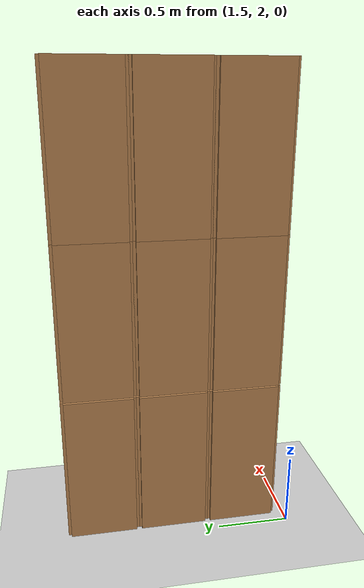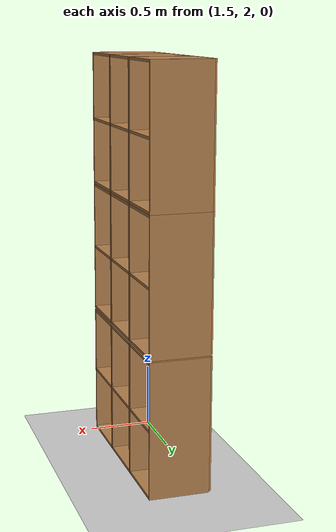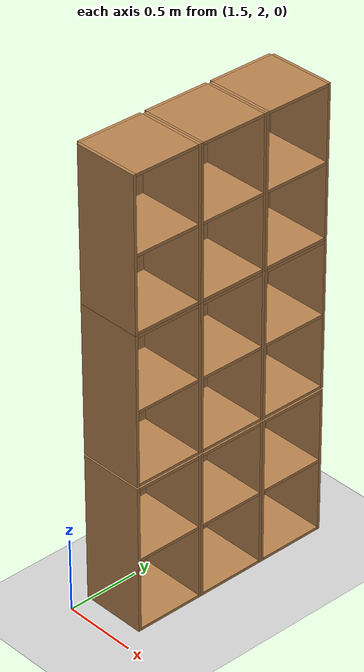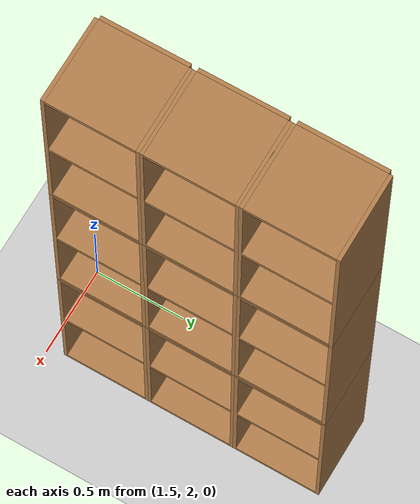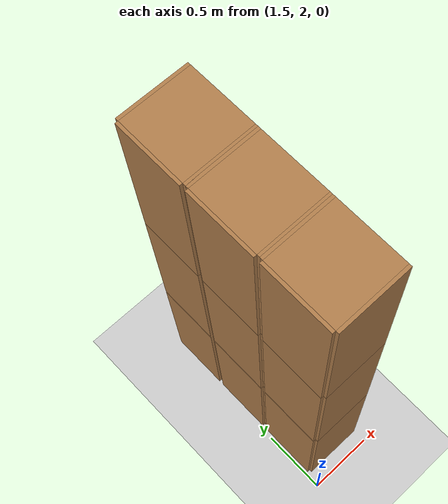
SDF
<sdf version="1.6">
 <world name="default">
  <model name="ground_plane">
   <static>1</static>
   <link name="link">
    <collision name="collision">
     <geometry><plane><normal>0 0 1</normal><size>100 100</size></plane></geometry>
     <surface>
      <contact><collide_bitmask>65535</collide_bitmask></contact>
      <friction><ode><mu>100</mu><mu2>50</mu2></ode></friction>
     </surface>
    </collision>
    <visual name="visual">
     <cast_shadows>0</cast_shadows>
     <geometry><plane><normal>0 0 1</normal><size>100 100</size></plane></geometry>
     <material>
      <script><uri>file://media/materials/scripts/gazebo.material</uri><name>Gazebo/Grey</name></script>
     </material>
    </visual>
   </link>
  </model>
  <model name="Locker18_clone_4_clone_2_clone_1_clone_clone_clone">
   <model name="Locker18">
    <model name="Locker3">
     <model name="cabinet">
      <static>1</static>
      <link name="cabinet_bottom_plate">
       <inertial>
        <pose>0 0 -1 0 -0 0</pose>
        <inertia><ixx>2.05</ixx><ixy>0</ixy><ixz>0</ixz><iyy>2.05</iyy><iyz>0</iyz><izz>2.05</izz></inertia>
        <mass>25</mass>
       </inertial>
       <collision name="cabinet_bottom_plate_geom">
        <pose>0 0 0.01 0 -0 0</pose>
        <geometry><box><size>0.45 0.45 0.02</size></box></geometry>
       </collision>
       <visual name="cabinet_bottom_plate_geom_visual">
        <pose>0 0 0.01 0 -0 0</pose>
        <geometry><box><size>0.45 0.45 0.02</size></box></geometry>
        <material>
         <script><uri>file://media/materials/scripts/gazebo.material</uri><name>Gazebo/Wood</name></script>
        </material>
       </visual>
       <collision name="cabinet_bottom_plate_geom_cabinet_back_plate">
        <pose>0.235 0 0.51 0 -0 0</pose>
        <geometry><box><size>0.02 0.45 1.02</size></box></geometry>
       </collision>
       <visual name="cabinet_bottom_plate_geom_cabinet_back_plate_visual">
        <pose>0.235 0 0.51 0 -0 0</pose>
        <geometry><box><size>0.02 0.45 1.02</size></box></geometry>
        <material>
         <script><uri>file://media/materials/scripts/gazebo.material</uri><name>Gazebo/Wood</name></script>
        </material>
       </visual>
       <collision name="cabinet_bottom_plate_geom_cabinet_left_plate">
        <pose>0 0.235 0.51 0 -0 0</pose>
        <geometry><box><size>0.45 0.02 1.02</size></box></geometry>
       </collision>
       <visual name="cabinet_bottom_plate_geom_cabinet_left_plate_visual">
        <pose>0 0.235 0.51 0 -0 0</pose>
        <geometry><box><size>0.45 0.02 1.02</size></box></geometry>
        <material>
         <script><uri>file://media/materials/scripts/gazebo.material</uri><name>Gazebo/Wood</name></script>
        </material>
       </visual>
       <collision name="cabinet_bottom_plate_geom_cabinet_middle_plate">
        <pose>0 0 0.51 0 -0 0</pose>
        <geometry><box><size>0.45 0.45 0.02</size></box></geometry>
       </collision>
       <visual name="cabinet_bottom_plate_geom_cabinet_middle_plate_visual">
        <pose>0 0 0.51 0 -0 0</pose>
        <geometry><box><size>0.45 0.45 0.02</size></box></geometry>
        <material>
         <script><uri>file://media/materials/scripts/gazebo.material</uri><name>Gazebo/Wood</name></script>
        </material>
       </visual>
       <collision name="cabinet_bottom_plate_geom_cabinet_right_plate">
        <pose>0 -0.235 0.51 0 -0 0</pose>
        <geometry><box><size>0.45 0.02 1.02</size></box></geometry>
       </collision>
       <visual name="cabinet_bottom_plate_geom_cabinet_right_plate_visual">
        <pose>0 -0.235 0.51 0 -0 0</pose>
        <geometry><box><size>0.45 0.02 1.02</size></box></geometry>
        <material>
         <script><uri>file://media/materials/scripts/gazebo.material</uri><name>Gazebo/Wood</name></script>
        </material>
       </visual>
       <collision name="cabinet_bottom_plate_geom_cabinet_top_plate">
        <pose>0 0 1.01 0 -0 0</pose>
        <geometry><box><size>0.45 0.45 0.02</size></box></geometry>
       </collision>
       <visual name="cabinet_bottom_plate_geom_cabinet_top_plate_visual">
        <pose>0 0 1.01 0 -0 0</pose>
        <geometry><box><size>0.45 0.45 0.02</size></box></geometry>
        <material>
         <script><uri>file://media/materials/scripts/gazebo.material</uri><name>Gazebo/Wood</name></script>
        </material>
       </visual>
      </link>
      <pose>-0.676968 1.45758 0 0 -0 0</pose>
     </model>
     <model name="cabinet_clone">
      <static>1</static>
      <link name="cabinet_bottom_plate">
       <inertial>
        <pose>0 0 -1 0 -0 0</pose>
        <inertia><ixx>2.05</ixx><ixy>0</ixy><ixz>0</ixz><iyy>2.05</iyy><iyz>0</iyz><izz>2.05</izz></inertia>
        <mass>25</mass>
       </inertial>
       <collision name="cabinet_bottom_plate_geom">
        <pose>0 0 0.01 0 -0 0</pose>
        <geometry><box><size>0.45 0.45 0.02</size></box></geometry>
       </collision>
       <visual name="cabinet_bottom_plate_geom_visual">
        <pose>0 0 0.01 0 -0 0</pose>
        <geometry><box><size>0.45 0.45 0.02</size></box></geometry>
        <material>
         <script><uri>file://media/materials/scripts/gazebo.material</uri><name>Gazebo/Wood</name></script>
        </material>
       </visual>
       <collision name="cabinet_bottom_plate_geom_cabinet_back_plate">
        <pose>0.235 0 0.51 0 -0 0</pose>
        <geometry><box><size>0.02 0.45 1.02</size></box></geometry>
       </collision>
       <visual name="cabinet_bottom_plate_geom_cabinet_back_plate_visual">
        <pose>0.235 0 0.51 0 -0 0</pose>
        <geometry><box><size>0.02 0.45 1.02</size></box></geometry>
        <material>
         <script><uri>file://media/materials/scripts/gazebo.material</uri><name>Gazebo/Wood</name></script>
        </material>
       </visual>
       <collision name="cabinet_bottom_plate_geom_cabinet_left_plate">
        <pose>0 0.235 0.51 0 -0 0</pose>
        <geometry><box><size>0.45 0.02 1.02</size></box></geometry>
       </collision>
       <visual name="cabinet_bottom_plate_geom_cabinet_left_plate_visual">
        <pose>0 0.235 0.51 0 -0 0</pose>
        <geometry><box><size>0.45 0.02 1.02</size></box></geometry>
        <material>
         <script><uri>file://media/materials/scripts/gazebo.material</uri><name>Gazebo/Wood</name></script>
        </material>
       </visual>
       <collision name="cabinet_bottom_plate_geom_cabinet_middle_plate">
        <pose>0 0 0.51 0 -0 0</pose>
        <geometry><box><size>0.45 0.45 0.02</size></box></geometry>
       </collision>
       <visual name="cabinet_bottom_plate_geom_cabinet_middle_plate_visual">
        <pose>0 0 0.51 0 -0 0</pose>
        <geometry><box><size>0.45 0.45 0.02</size></box></geometry>
        <material>
         <script><uri>file://media/materials/scripts/gazebo.material</uri><name>Gazebo/Wood</name></script>
        </material>
       </visual>
       <collision name="cabinet_bottom_plate_geom_cabinet_right_plate">
        <pose>0 -0.235 0.51 0 -0 0</pose>
        <geometry><box><size>0.45 0.02 1.02</size></box></geometry>
       </collision>
       <visual name="cabinet_bottom_plate_geom_cabinet_right_plate_visual">
        <pose>0 -0.235 0.51 0 -0 0</pose>
        <geometry><box><size>0.45 0.02 1.02</size></box></geometry>
        <material>
         <script><uri>file://media/materials/scripts/gazebo.material</uri><name>Gazebo/Wood</name></script>
        </material>
       </visual>
       <collision name="cabinet_bottom_plate_geom_cabinet_top_plate">
        <pose>0 0 1.01 0 -0 0</pose>
        <geometry><box><size>0.45 0.45 0.02</size></box></geometry>
       </collision>
       <visual name="cabinet_bottom_plate_geom_cabinet_top_plate_visual">
        <pose>0 0 1.01 0 -0 0</pose>
        <geometry><box><size>0.45 0.45 0.02</size></box></geometry>
        <material>
         <script><uri>file://media/materials/scripts/gazebo.material</uri><name>Gazebo/Wood</name></script>
        </material>
       </visual>
      </link>
      <pose>-0.676968 0.970971 0 0 -0 0</pose>
     </model>
     <model name="cabinet_clone_0">
      <static>1</static>
      <link name="cabinet_bottom_plate">
       <inertial>
        <pose>0 0 -1 0 -0 0</pose>
        <inertia><ixx>2.05</ixx><ixy>0</ixy><ixz>0</ixz><iyy>2.05</iyy><iyz>0</iyz><izz>2.05</izz></inertia>
        <mass>25</mass>
       </inertial>
       <collision name="cabinet_bottom_plate_geom">
        <pose>0 0 0.01 0 -0 0</pose>
        <geometry><box><size>0.45 0.45 0.02</size></box></geometry>
       </collision>
       <visual name="cabinet_bottom_plate_geom_visual">
        <pose>0 0 0.01 0 -0 0</pose>
        <geometry><box><size>0.45 0.45 0.02</size></box></geometry>
        <material>
         <script><uri>file://media/materials/scripts/gazebo.material</uri><name>Gazebo/Wood</name></script>
        </material>
       </visual>
       <collision name="cabinet_bottom_plate_geom_cabinet_back_plate">
        <pose>0.235 0 0.51 0 -0 0</pose>
        <geometry><box><size>0.02 0.45 1.02</size></box></geometry>
       </collision>
       <visual name="cabinet_bottom_plate_geom_cabinet_back_plate_visual">
        <pose>0.235 0 0.51 0 -0 0</pose>
        <geometry><box><size>0.02 0.45 1.02</size></box></geometry>
        <material>
         <script><uri>file://media/materials/scripts/gazebo.material</uri><name>Gazebo/Wood</name></script>
        </material>
       </visual>
       <collision name="cabinet_bottom_plate_geom_cabinet_left_plate">
        <pose>0 0.235 0.51 0 -0 0</pose>
        <geometry><box><size>0.45 0.02 1.02</size></box></geometry>
       </collision>
       <visual name="cabinet_bottom_plate_geom_cabinet_left_plate_visual">
        <pose>0 0.235 0.51 0 -0 0</pose>
        <geometry><box><size>0.45 0.02 1.02</size></box></geometry>
        <material>
         <script><uri>file://media/materials/scripts/gazebo.material</uri><name>Gazebo/Wood</name></script>
        </material>
       </visual>
       <collision name="cabinet_bottom_plate_geom_cabinet_middle_plate">
        <pose>0 0 0.51 0 -0 0</pose>
        <geometry><box><size>0.45 0.45 0.02</size></box></geometry>
       </collision>
       <visual name="cabinet_bottom_plate_geom_cabinet_middle_plate_visual">
        <pose>0 0 0.51 0 -0 0</pose>
        <geometry><box><size>0.45 0.45 0.02</size></box></geometry>
        <material>
         <script><uri>file://media/materials/scripts/gazebo.material</uri><name>Gazebo/Wood</name></script>
        </material>
       </visual>
       <collision name="cabinet_bottom_plate_geom_cabinet_right_plate">
        <pose>0 -0.235 0.51 0 -0 0</pose>
        <geometry><box><size>0.45 0.02 1.02</size></box></geometry>
       </collision>
       <visual name="cabinet_bottom_plate_geom_cabinet_right_plate_visual">
        <pose>0 -0.235 0.51 0 -0 0</pose>
        <geometry><box><size>0.45 0.02 1.02</size></box></geometry>
        <material>
         <script><uri>file://media/materials/scripts/gazebo.material</uri><name>Gazebo/Wood</name></script>
        </material>
       </visual>
       <collision name="cabinet_bottom_plate_geom_cabinet_top_plate">
        <pose>0 0 1.01 0 -0 0</pose>
        <geometry><box><size>0.45 0.45 0.02</size></box></geometry>
       </collision>
       <visual name="cabinet_bottom_plate_geom_cabinet_top_plate_visual">
        <pose>0 0 1.01 0 -0 0</pose>
        <geometry><box><size>0.45 0.45 0.02</size></box></geometry>
        <material>
         <script><uri>file://media/materials/scripts/gazebo.material</uri><name>Gazebo/Wood</name></script>
        </material>
       </visual>
      </link>
      <pose>-0.676968 0.48391 0 0 -0 0</pose>
     </model>
     <static>0</static>
     <pose>0 3e-06 -1.02763 0 -0 0</pose>
    </model>
    <model name="Locker3_clone">
     <model name="cabinet">
      <static>1</static>
      <link name="cabinet_bottom_plate">
       <inertial>
        <pose>0 0 -1 0 -0 0</pose>
        <inertia><ixx>2.05</ixx><ixy>0</ixy><ixz>0</ixz><iyy>2.05</iyy><iyz>0</iyz><izz>2.05</izz></inertia>
        <mass>25</mass>
       </inertial>
       <collision name="cabinet_bottom_plate_geom">
        <pose>0 0 0.01 0 -0 0</pose>
        <geometry><box><size>0.45 0.45 0.02</size></box></geometry>
       </collision>
       <visual name="cabinet_bottom_plate_geom_visual">
        <pose>0 0 0.01 0 -0 0</pose>
        <geometry><box><size>0.45 0.45 0.02</size></box></geometry>
        <material>
         <script><uri>file://media/materials/scripts/gazebo.material</uri><name>Gazebo/Wood</name></script>
        </material>
       </visual>
       <collision name="cabinet_bottom_plate_geom_cabinet_back_plate">
        <pose>0.235 0 0.51 0 -0 0</pose>
        <geometry><box><size>0.02 0.45 1.02</size></box></geometry>
       </collision>
       <visual name="cabinet_bottom_plate_geom_cabinet_back_plate_visual">
        <pose>0.235 0 0.51 0 -0 0</pose>
        <geometry><box><size>0.02 0.45 1.02</size></box></geometry>
        <material>
         <script><uri>file://media/materials/scripts/gazebo.material</uri><name>Gazebo/Wood</name></script>
        </material>
       </visual>
       <collision name="cabinet_bottom_plate_geom_cabinet_left_plate">
        <pose>0 0.235 0.51 0 -0 0</pose>
        <geometry><box><size>0.45 0.02 1.02</size></box></geometry>
       </collision>
       <visual name="cabinet_bottom_plate_geom_cabinet_left_plate_visual">
        <pose>0 0.235 0.51 0 -0 0</pose>
        <geometry><box><size>0.45 0.02 1.02</size></box></geometry>
        <material>
         <script><uri>file://media/materials/scripts/gazebo.material</uri><name>Gazebo/Wood</name></script>
        </material>
       </visual>
       <collision name="cabinet_bottom_plate_geom_cabinet_middle_plate">
        <pose>0 0 0.51 0 -0 0</pose>
        <geometry><box><size>0.45 0.45 0.02</size></box></geometry>
       </collision>
       <visual name="cabinet_bottom_plate_geom_cabinet_middle_plate_visual">
        <pose>0 0 0.51 0 -0 0</pose>
        <geometry><box><size>0.45 0.45 0.02</size></box></geometry>
        <material>
         <script><uri>file://media/materials/scripts/gazebo.material</uri><name>Gazebo/Wood</name></script>
        </material>
       </visual>
       <collision name="cabinet_bottom_plate_geom_cabinet_right_plate">
        <pose>0 -0.235 0.51 0 -0 0</pose>
        <geometry><box><size>0.45 0.02 1.02</size></box></geometry>
       </collision>
       <visual name="cabinet_bottom_plate_geom_cabinet_right_plate_visual">
        <pose>0 -0.235 0.51 0 -0 0</pose>
        <geometry><box><size>0.45 0.02 1.02</size></box></geometry>
        <material>
         <script><uri>file://media/materials/scripts/gazebo.material</uri><name>Gazebo/Wood</name></script>
        </material>
       </visual>
       <collision name="cabinet_bottom_plate_geom_cabinet_top_plate">
        <pose>0 0 1.01 0 -0 0</pose>
        <geometry><box><size>0.45 0.45 0.02</size></box></geometry>
       </collision>
       <visual name="cabinet_bottom_plate_geom_cabinet_top_plate_visual">
        <pose>0 0 1.01 0 -0 0</pose>
        <geometry><box><size>0.45 0.45 0.02</size></box></geometry>
        <material>
         <script><uri>file://media/materials/scripts/gazebo.material</uri><name>Gazebo/Wood</name></script>
        </material>
       </visual>
      </link>
      <pose>-0.676968 1.45758 0 0 -0 0</pose>
     </model>
     <model name="cabinet_clone">
      <static>1</static>
      <link name="cabinet_bottom_plate">
       <inertial>
        <pose>0 0 -1 0 -0 0</pose>
        <inertia><ixx>2.05</ixx><ixy>0</ixy><ixz>0</ixz><iyy>2.05</iyy><iyz>0</iyz><izz>2.05</izz></inertia>
        <mass>25</mass>
       </inertial>
       <collision name="cabinet_bottom_plate_geom">
        <pose>0 0 0.01 0 -0 0</pose>
        <geometry><box><size>0.45 0.45 0.02</size></box></geometry>
       </collision>
       <visual name="cabinet_bottom_plate_geom_visual">
        <pose>0 0 0.01 0 -0 0</pose>
        <geometry><box><size>0.45 0.45 0.02</size></box></geometry>
        <material>
         <script><uri>file://media/materials/scripts/gazebo.material</uri><name>Gazebo/Wood</name></script>
        </material>
       </visual>
       <collision name="cabinet_bottom_plate_geom_cabinet_back_plate">
        <pose>0.235 0 0.51 0 -0 0</pose>
        <geometry><box><size>0.02 0.45 1.02</size></box></geometry>
       </collision>
       <visual name="cabinet_bottom_plate_geom_cabinet_back_plate_visual">
        <pose>0.235 0 0.51 0 -0 0</pose>
        <geometry><box><size>0.02 0.45 1.02</size></box></geometry>
        <material>
         <script><uri>file://media/materials/scripts/gazebo.material</uri><name>Gazebo/Wood</name></script>
        </material>
       </visual>
       <collision name="cabinet_bottom_plate_geom_cabinet_left_plate">
        <pose>0 0.235 0.51 0 -0 0</pose>
        <geometry><box><size>0.45 0.02 1.02</size></box></geometry>
       </collision>
       <visual name="cabinet_bottom_plate_geom_cabinet_left_plate_visual">
        <pose>0 0.235 0.51 0 -0 0</pose>
        <geometry><box><size>0.45 0.02 1.02</size></box></geometry>
        <material>
         <script><uri>file://media/materials/scripts/gazebo.material</uri><name>Gazebo/Wood</name></script>
        </material>
       </visual>
       <collision name="cabinet_bottom_plate_geom_cabinet_middle_plate">
        <pose>0 0 0.51 0 -0 0</pose>
        <geometry><box><size>0.45 0.45 0.02</size></box></geometry>
       </collision>
       <visual name="cabinet_bottom_plate_geom_cabinet_middle_plate_visual">
        <pose>0 0 0.51 0 -0 0</pose>
        <geometry><box><size>0.45 0.45 0.02</size></box></geometry>
        <material>
         <script><uri>file://media/materials/scripts/gazebo.material</uri><name>Gazebo/Wood</name></script>
        </material>
       </visual>
       <collision name="cabinet_bottom_plate_geom_cabinet_right_plate">
        <pose>0 -0.235 0.51 0 -0 0</pose>
        <geometry><box><size>0.45 0.02 1.02</size></box></geometry>
       </collision>
       <visual name="cabinet_bottom_plate_geom_cabinet_right_plate_visual">
        <pose>0 -0.235 0.51 0 -0 0</pose>
        <geometry><box><size>0.45 0.02 1.02</size></box></geometry>
        <material>
         <script><uri>file://media/materials/scripts/gazebo.material</uri><name>Gazebo/Wood</name></script>
        </material>
       </visual>
       <collision name="cabinet_bottom_plate_geom_cabinet_top_plate">
        <pose>0 0 1.01 0 -0 0</pose>
        <geometry><box><size>0.45 0.45 0.02</size></box></geometry>
       </collision>
       <visual name="cabinet_bottom_plate_geom_cabinet_top_plate_visual">
        <pose>0 0 1.01 0 -0 0</pose>
        <geometry><box><size>0.45 0.45 0.02</size></box></geometry>
        <material>
         <script><uri>file://media/materials/scripts/gazebo.material</uri><name>Gazebo/Wood</name></script>
        </material>
       </visual>
      </link>
      <pose>-0.676968 0.970971 0 0 -0 0</pose>
     </model>
     <model name="cabinet_clone_0">
      <static>1</static>
      <link name="cabinet_bottom_plate">
       <inertial>
        <pose>0 0 -1 0 -0 0</pose>
        <inertia><ixx>2.05</ixx><ixy>0</ixy><ixz>0</ixz><iyy>2.05</iyy><iyz>0</iyz><izz>2.05</izz></inertia>
        <mass>25</mass>
       </inertial>
       <collision name="cabinet_bottom_plate_geom">
        <pose>0 0 0.01 0 -0 0</pose>
        <geometry><box><size>0.45 0.45 0.02</size></box></geometry>
       </collision>
       <visual name="cabinet_bottom_plate_geom_visual">
        <pose>0 0 0.01 0 -0 0</pose>
        <geometry><box><size>0.45 0.45 0.02</size></box></geometry>
        <material>
         <script><uri>file://media/materials/scripts/gazebo.material</uri><name>Gazebo/Wood</name></script>
        </material>
       </visual>
       <collision name="cabinet_bottom_plate_geom_cabinet_back_plate">
        <pose>0.235 0 0.51 0 -0 0</pose>
        <geometry><box><size>0.02 0.45 1.02</size></box></geometry>
       </collision>
       <visual name="cabinet_bottom_plate_geom_cabinet_back_plate_visual">
        <pose>0.235 0 0.51 0 -0 0</pose>
        <geometry><box><size>0.02 0.45 1.02</size></box></geometry>
        <material>
         <script><uri>file://media/materials/scripts/gazebo.material</uri><name>Gazebo/Wood</name></script>
        </material>
       </visual>
       <collision name="cabinet_bottom_plate_geom_cabinet_left_plate">
        <pose>0 0.235 0.51 0 -0 0</pose>
        <geometry><box><size>0.45 0.02 1.02</size></box></geometry>
       </collision>
       <visual name="cabinet_bottom_plate_geom_cabinet_left_plate_visual">
        <pose>0 0.235 0.51 0 -0 0</pose>
        <geometry><box><size>0.45 0.02 1.02</size></box></geometry>
        <material>
         <script><uri>file://media/materials/scripts/gazebo.material</uri><name>Gazebo/Wood</name></script>
        </material>
       </visual>
       <collision name="cabinet_bottom_plate_geom_cabinet_middle_plate">
        <pose>0 0 0.51 0 -0 0</pose>
        <geometry><box><size>0.45 0.45 0.02</size></box></geometry>
       </collision>
       <visual name="cabinet_bottom_plate_geom_cabinet_middle_plate_visual">
        <pose>0 0 0.51 0 -0 0</pose>
        <geometry><box><size>0.45 0.45 0.02</size></box></geometry>
        <material>
         <script><uri>file://media/materials/scripts/gazebo.material</uri><name>Gazebo/Wood</name></script>
        </material>
       </visual>
       <collision name="cabinet_bottom_plate_geom_cabinet_right_plate">
        <pose>0 -0.235 0.51 0 -0 0</pose>
        <geometry><box><size>0.45 0.02 1.02</size></box></geometry>
       </collision>
       <visual name="cabinet_bottom_plate_geom_cabinet_right_plate_visual">
        <pose>0 -0.235 0.51 0 -0 0</pose>
        <geometry><box><size>0.45 0.02 1.02</size></box></geometry>
        <material>
         <script><uri>file://media/materials/scripts/gazebo.material</uri><name>Gazebo/Wood</name></script>
        </material>
       </visual>
       <collision name="cabinet_bottom_plate_geom_cabinet_top_plate">
        <pose>0 0 1.01 0 -0 0</pose>
        <geometry><box><size>0.45 0.45 0.02</size></box></geometry>
       </collision>
       <visual name="cabinet_bottom_plate_geom_cabinet_top_plate_visual">
        <pose>0 0 1.01 0 -0 0</pose>
        <geometry><box><size>0.45 0.45 0.02</size></box></geometry>
        <material>
         <script><uri>file://media/materials/scripts/gazebo.material</uri><name>Gazebo/Wood</name></script>
        </material>
       </visual>
      </link>
      <pose>-0.676968 0.48391 0 0 -0 0</pose>
     </model>
     <static>0</static>
     <pose>0 3e-06 0.003717 0 -0 0</pose>
    </model>
    <model name="Locker3_clone_clone">
     <model name="cabinet">
      <static>1</static>
      <link name="cabinet_bottom_plate">
       <inertial>
        <pose>0 0 -1 0 -0 0</pose>
        <inertia><ixx>2.05</ixx><ixy>0</ixy><ixz>0</ixz><iyy>2.05</iyy><iyz>0</iyz><izz>2.05</izz></inertia>
        <mass>25</mass>
       </inertial>
       <collision name="cabinet_bottom_plate_geom">
        <pose>0 0 0.01 0 -0 0</pose>
        <geometry><box><size>0.45 0.45 0.02</size></box></geometry>
       </collision>
       <visual name="cabinet_bottom_plate_geom_visual">
        <pose>0 0 0.01 0 -0 0</pose>
        <geometry><box><size>0.45 0.45 0.02</size></box></geometry>
        <material>
         <script><uri>file://media/materials/scripts/gazebo.material</uri><name>Gazebo/Wood</name></script>
        </material>
       </visual>
       <collision name="cabinet_bottom_plate_geom_cabinet_back_plate">
        <pose>0.235 0 0.51 0 -0 0</pose>
        <geometry><box><size>0.02 0.45 1.02</size></box></geometry>
       </collision>
       <visual name="cabinet_bottom_plate_geom_cabinet_back_plate_visual">
        <pose>0.235 0 0.51 0 -0 0</pose>
        <geometry><box><size>0.02 0.45 1.02</size></box></geometry>
        <material>
         <script><uri>file://media/materials/scripts/gazebo.material</uri><name>Gazebo/Wood</name></script>
        </material>
       </visual>
       <collision name="cabinet_bottom_plate_geom_cabinet_left_plate">
        <pose>0 0.235 0.51 0 -0 0</pose>
        <geometry><box><size>0.45 0.02 1.02</size></box></geometry>
       </collision>
       <visual name="cabinet_bottom_plate_geom_cabinet_left_plate_visual">
        <pose>0 0.235 0.51 0 -0 0</pose>
        <geometry><box><size>0.45 0.02 1.02</size></box></geometry>
        <material>
         <script><uri>file://media/materials/scripts/gazebo.material</uri><name>Gazebo/Wood</name></script>
        </material>
       </visual>
       <collision name="cabinet_bottom_plate_geom_cabinet_middle_plate">
        <pose>0 0 0.51 0 -0 0</pose>
        <geometry><box><size>0.45 0.45 0.02</size></box></geometry>
       </collision>
       <visual name="cabinet_bottom_plate_geom_cabinet_middle_plate_visual">
        <pose>0 0 0.51 0 -0 0</pose>
        <geometry><box><size>0.45 0.45 0.02</size></box></geometry>
        <material>
         <script><uri>file://media/materials/scripts/gazebo.material</uri><name>Gazebo/Wood</name></script>
        </material>
       </visual>
       <collision name="cabinet_bottom_plate_geom_cabinet_right_plate">
        <pose>0 -0.235 0.51 0 -0 0</pose>
        <geometry><box><size>0.45 0.02 1.02</size></box></geometry>
       </collision>
       <visual name="cabinet_bottom_plate_geom_cabinet_right_plate_visual">
        <pose>0 -0.235 0.51 0 -0 0</pose>
        <geometry><box><size>0.45 0.02 1.02</size></box></geometry>
        <material>
         <script><uri>file://media/materials/scripts/gazebo.material</uri><name>Gazebo/Wood</name></script>
        </material>
       </visual>
       <collision name="cabinet_bottom_plate_geom_cabinet_top_plate">
        <pose>0 0 1.01 0 -0 0</pose>
        <geometry><box><size>0.45 0.45 0.02</size></box></geometry>
       </collision>
       <visual name="cabinet_bottom_plate_geom_cabinet_top_plate_visual">
        <pose>0 0 1.01 0 -0 0</pose>
        <geometry><box><size>0.45 0.45 0.02</size></box></geometry>
        <material>
         <script><uri>file://media/materials/scripts/gazebo.material</uri><name>Gazebo/Wood</name></script>
        </material>
       </visual>
      </link>
      <pose>-0.676968 1.45758 0 0 -0 0</pose>
     </model>
     <model name="cabinet_clone">
      <static>1</static>
      <link name="cabinet_bottom_plate">
       <inertial>
        <pose>0 0 -1 0 -0 0</pose>
        <inertia><ixx>2.05</ixx><ixy>0</ixy><ixz>0</ixz><iyy>2.05</iyy><iyz>0</iyz><izz>2.05</izz></inertia>
        <mass>25</mass>
       </inertial>
       <collision name="cabinet_bottom_plate_geom">
        <pose>0 0 0.01 0 -0 0</pose>
        <geometry><box><size>0.45 0.45 0.02</size></box></geometry>
       </collision>
       <visual name="cabinet_bottom_plate_geom_visual">
        <pose>0 0 0.01 0 -0 0</pose>
        <geometry><box><size>0.45 0.45 0.02</size></box></geometry>
        <material>
         <script><uri>file://media/materials/scripts/gazebo.material</uri><name>Gazebo/Wood</name></script>
        </material>
       </visual>
       <collision name="cabinet_bottom_plate_geom_cabinet_back_plate">
        <pose>0.235 0 0.51 0 -0 0</pose>
        <geometry><box><size>0.02 0.45 1.02</size></box></geometry>
       </collision>
       <visual name="cabinet_bottom_plate_geom_cabinet_back_plate_visual">
        <pose>0.235 0 0.51 0 -0 0</pose>
        <geometry><box><size>0.02 0.45 1.02</size></box></geometry>
        <material>
         <script><uri>file://media/materials/scripts/gazebo.material</uri><name>Gazebo/Wood</name></script>
        </material>
       </visual>
       <collision name="cabinet_bottom_plate_geom_cabinet_left_plate">
        <pose>0 0.235 0.51 0 -0 0</pose>
        <geometry><box><size>0.45 0.02 1.02</size></box></geometry>
       </collision>
       <visual name="cabinet_bottom_plate_geom_cabinet_left_plate_visual">
        <pose>0 0.235 0.51 0 -0 0</pose>
        <geometry><box><size>0.45 0.02 1.02</size></box></geometry>
        <material>
         <script><uri>file://media/materials/scripts/gazebo.material</uri><name>Gazebo/Wood</name></script>
        </material>
       </visual>
       <collision name="cabinet_bottom_plate_geom_cabinet_middle_plate">
        <pose>0 0 0.51 0 -0 0</pose>
        <geometry><box><size>0.45 0.45 0.02</size></box></geometry>
       </collision>
       <visual name="cabinet_bottom_plate_geom_cabinet_middle_plate_visual">
        <pose>0 0 0.51 0 -0 0</pose>
        <geometry><box><size>0.45 0.45 0.02</size></box></geometry>
        <material>
         <script><uri>file://media/materials/scripts/gazebo.material</uri><name>Gazebo/Wood</name></script>
        </material>
       </visual>
       <collision name="cabinet_bottom_plate_geom_cabinet_right_plate">
        <pose>0 -0.235 0.51 0 -0 0</pose>
        <geometry><box><size>0.45 0.02 1.02</size></box></geometry>
       </collision>
       <visual name="cabinet_bottom_plate_geom_cabinet_right_plate_visual">
        <pose>0 -0.235 0.51 0 -0 0</pose>
        <geometry><box><size>0.45 0.02 1.02</size></box></geometry>
        <material>
         <script><uri>file://media/materials/scripts/gazebo.material</uri><name>Gazebo/Wood</name></script>
        </material>
       </visual>
       <collision name="cabinet_bottom_plate_geom_cabinet_top_plate">
        <pose>0 0 1.01 0 -0 0</pose>
        <geometry><box><size>0.45 0.45 0.02</size></box></geometry>
       </collision>
       <visual name="cabinet_bottom_plate_geom_cabinet_top_plate_visual">
        <pose>0 0 1.01 0 -0 0</pose>
        <geometry><box><size>0.45 0.45 0.02</size></box></geometry>
        <material>
         <script><uri>file://media/materials/scripts/gazebo.material</uri><name>Gazebo/Wood</name></script>
        </material>
       </visual>
      </link>
      <pose>-0.676968 0.970971 0 0 -0 0</pose>
     </model>
     <model name="cabinet_clone_0">
      <static>1</static>
      <link name="cabinet_bottom_plate">
       <inertial>
        <pose>0 0 -1 0 -0 0</pose>
        <inertia><ixx>2.05</ixx><ixy>0</ixy><ixz>0</ixz><iyy>2.05</iyy><iyz>0</iyz><izz>2.05</izz></inertia>
        <mass>25</mass>
       </inertial>
       <collision name="cabinet_bottom_plate_geom">
        <pose>0 0 0.01 0 -0 0</pose>
        <geometry><box><size>0.45 0.45 0.02</size></box></geometry>
       </collision>
       <visual name="cabinet_bottom_plate_geom_visual">
        <pose>0 0 0.01 0 -0 0</pose>
        <geometry><box><size>0.45 0.45 0.02</size></box></geometry>
        <material>
         <script><uri>file://media/materials/scripts/gazebo.material</uri><name>Gazebo/Wood</name></script>
        </material>
       </visual>
       <collision name="cabinet_bottom_plate_geom_cabinet_back_plate">
        <pose>0.235 0 0.51 0 -0 0</pose>
        <geometry><box><size>0.02 0.45 1.02</size></box></geometry>
       </collision>
       <visual name="cabinet_bottom_plate_geom_cabinet_back_plate_visual">
        <pose>0.235 0 0.51 0 -0 0</pose>
        <geometry><box><size>0.02 0.45 1.02</size></box></geometry>
        <material>
         <script><uri>file://media/materials/scripts/gazebo.material</uri><name>Gazebo/Wood</name></script>
        </material>
       </visual>
       <collision name="cabinet_bottom_plate_geom_cabinet_left_plate">
        <pose>0 0.235 0.51 0 -0 0</pose>
        <geometry><box><size>0.45 0.02 1.02</size></box></geometry>
       </collision>
       <visual name="cabinet_bottom_plate_geom_cabinet_left_plate_visual">
        <pose>0 0.235 0.51 0 -0 0</pose>
        <geometry><box><size>0.45 0.02 1.02</size></box></geometry>
        <material>
         <script><uri>file://media/materials/scripts/gazebo.material</uri><name>Gazebo/Wood</name></script>
        </material>
       </visual>
       <collision name="cabinet_bottom_plate_geom_cabinet_middle_plate">
        <pose>0 0 0.51 0 -0 0</pose>
        <geometry><box><size>0.45 0.45 0.02</size></box></geometry>
       </collision>
       <visual name="cabinet_bottom_plate_geom_cabinet_middle_plate_visual">
        <pose>0 0 0.51 0 -0 0</pose>
        <geometry><box><size>0.45 0.45 0.02</size></box></geometry>
        <material>
         <script><uri>file://media/materials/scripts/gazebo.material</uri><name>Gazebo/Wood</name></script>
        </material>
       </visual>
       <collision name="cabinet_bottom_plate_geom_cabinet_right_plate">
        <pose>0 -0.235 0.51 0 -0 0</pose>
        <geometry><box><size>0.45 0.02 1.02</size></box></geometry>
       </collision>
       <visual name="cabinet_bottom_plate_geom_cabinet_right_plate_visual">
        <pose>0 -0.235 0.51 0 -0 0</pose>
        <geometry><box><size>0.45 0.02 1.02</size></box></geometry>
        <material>
         <script><uri>file://media/materials/scripts/gazebo.material</uri><name>Gazebo/Wood</name></script>
        </material>
       </visual>
       <collision name="cabinet_bottom_plate_geom_cabinet_top_plate">
        <pose>0 0 1.01 0 -0 0</pose>
        <geometry><box><size>0.45 0.45 0.02</size></box></geometry>
       </collision>
       <visual name="cabinet_bottom_plate_geom_cabinet_top_plate_visual">
        <pose>0 0 1.01 0 -0 0</pose>
        <geometry><box><size>0.45 0.45 0.02</size></box></geometry>
        <material>
         <script><uri>file://media/materials/scripts/gazebo.material</uri><name>Gazebo/Wood</name></script>
        </material>
       </visual>
      </link>
      <pose>-0.676968 0.48391 0 0 -0 0</pose>
     </model>
     <static>0</static>
     <pose>0 3e-06 1.02391 0 -0 0</pose>
    </model>
    <static>0</static>
    <pose>-0 4e-06 4e-06 0 -0 0</pose>
   </model>
   <static>0</static>
   <pose>1.08178 3.79974 1.08672 0 -0 3.14119</pose>
  </model>
 </world>
</sdf>
